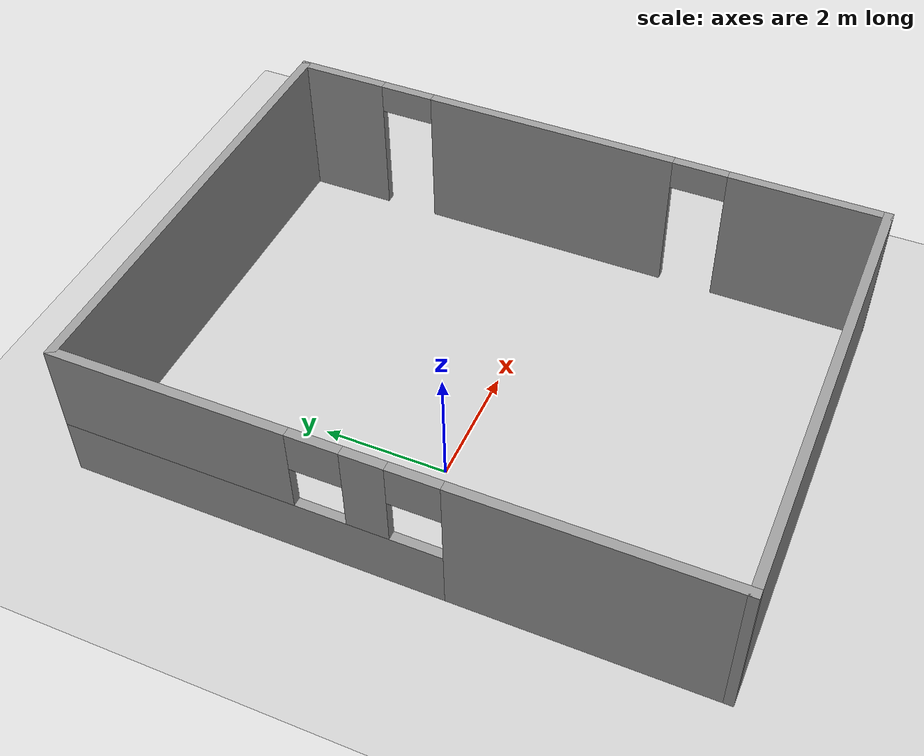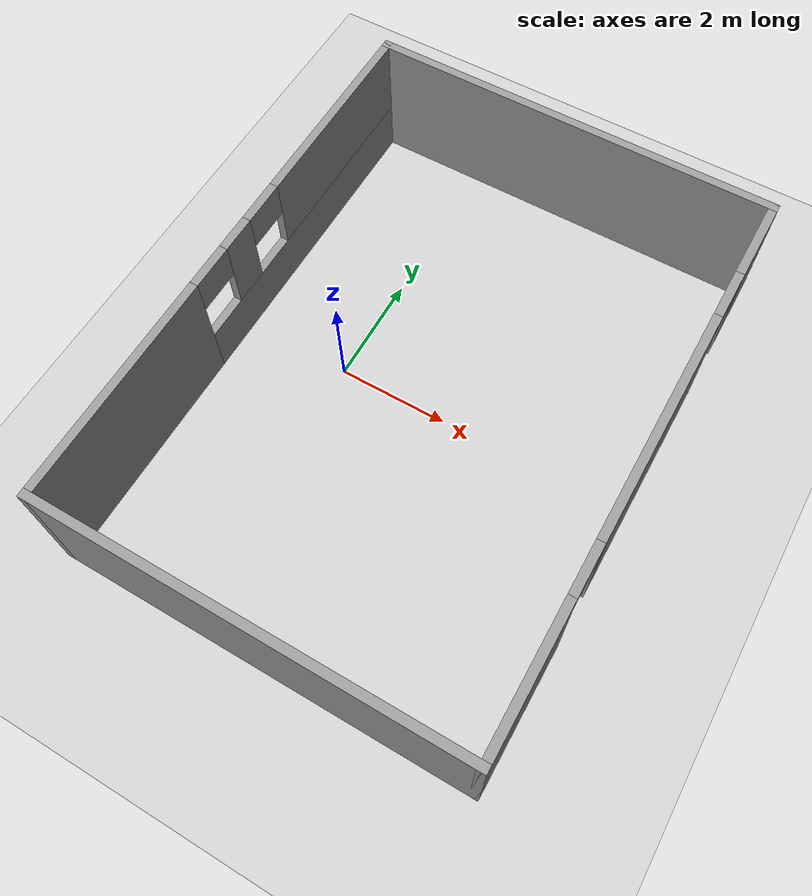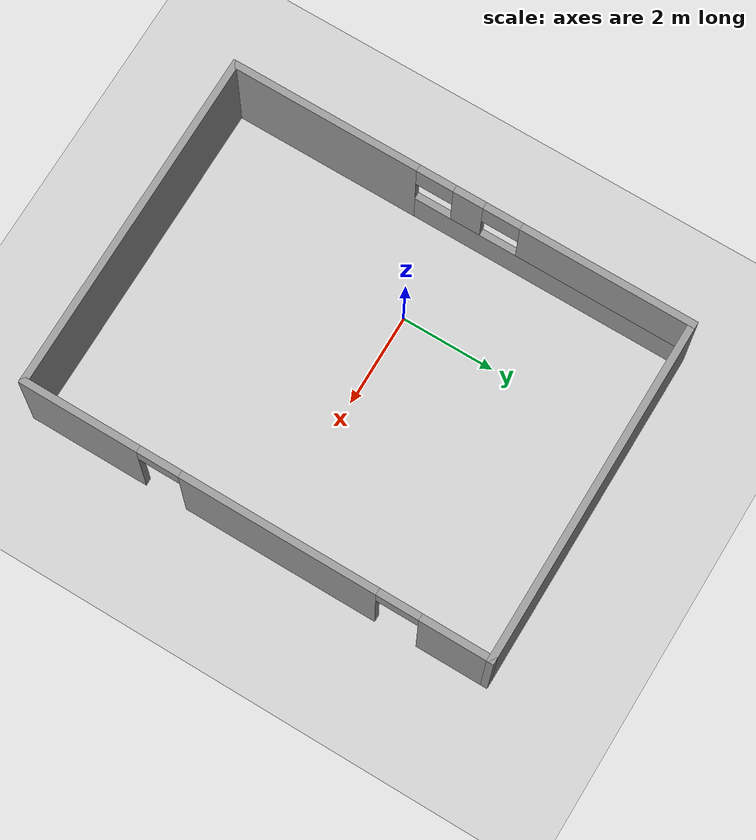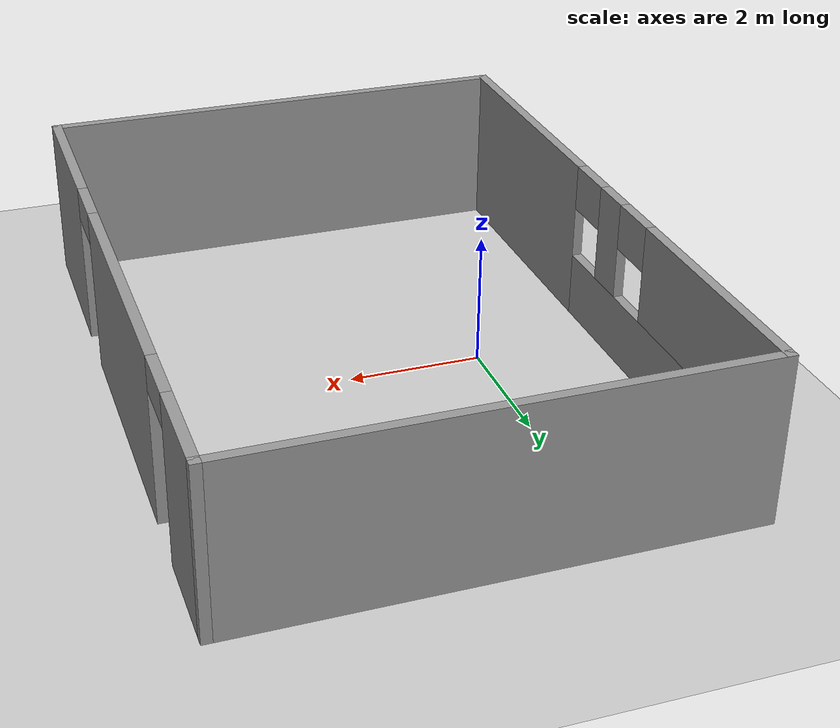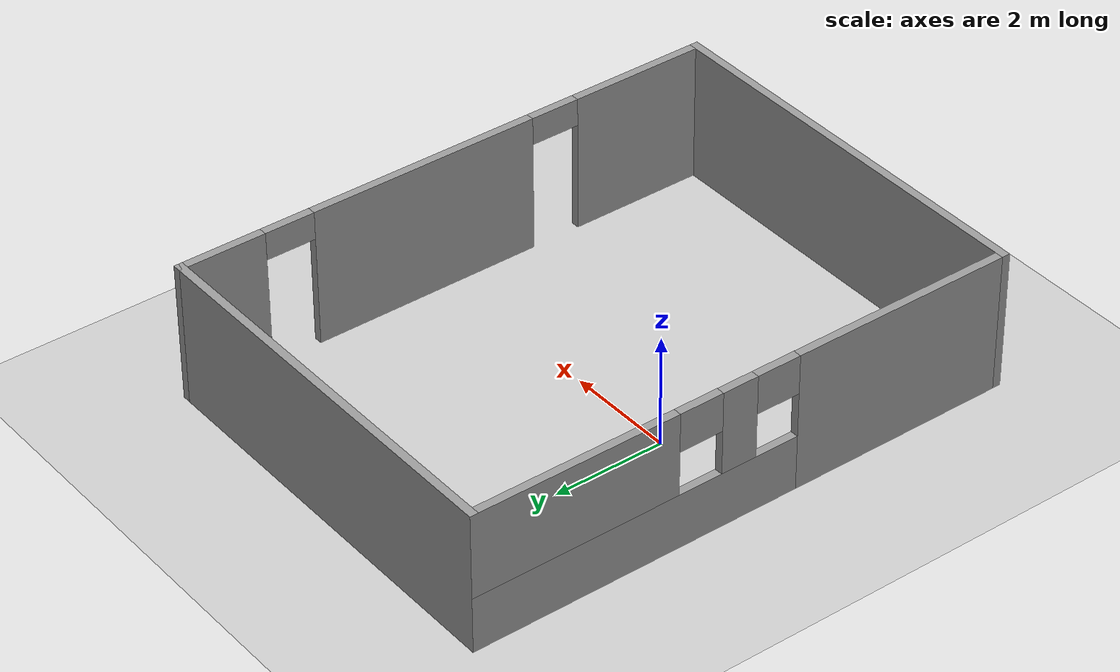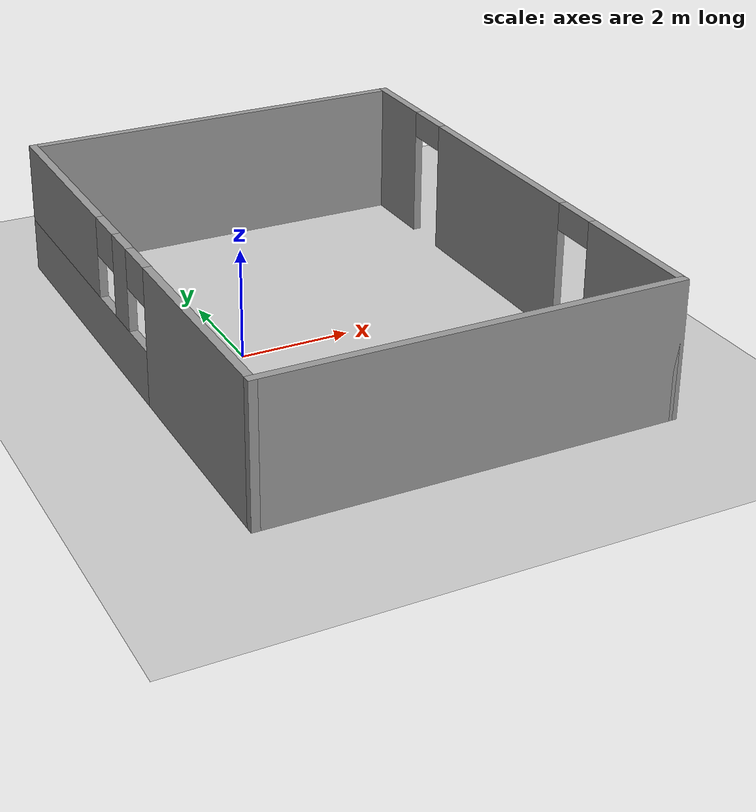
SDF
<?xml version="1.0" ?>
<sdf version="1.4">
  <world name="default">
    <include>
      <uri>model://ground_plane</uri>
    </include>

    <include>
      <uri>model://sun</uri>
    </include>

    <model name="kitchen_1">
      <pose>0 0 0  0 0 0</pose>
      <include>
        <static>false</static>
        <uri>model://kitchen_1</uri>
      </include>
      <!-- reference to your plugin -->
      <plugin name="model_walk" filename="libmodel_walk.so"/>
    </model>
  </world>
</sdf>

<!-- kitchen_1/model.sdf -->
<sdf version='1.6'>
  <model name='kitchen_1'>
    <pose frame=''>1.675 0 0 0 -0 0</pose>
    <link name='Wall_0'>
      <pose frame=''>-3.675 0 0 0 -0 1.5708</pose>
      <visual name='Wall_0_Visual_0'>
        <pose frame=''>-3.0016 0 1.25 0 -0 0</pose>
        <geometry>
          <box>
            <size>4.14681 0.15 2.5</size>
          </box>
        </geometry>
        <material>
          <script>
            <uri>file://media/materials/scripts/gazebo.material</uri>
            <name>Gazebo/Grey</name>
          </script>
          <ambient>1 1 1 1</ambient>
        </material>
      </visual>
      <collision name='Wall_0_Collision_0'>
        <geometry>
          <box>
            <size>4.14681 0.15 2.5</size>
          </box>
        </geometry>
        <pose frame=''>-3.0016 0 1.25 0 -0 0</pose>
      </collision>
      <visual name='Wall_0_Visual_1'>
        <pose frame=''>2.0734 0 0.5 0 -0 0</pose>
        <geometry>
          <box>
            <size>6.00319 0.15 1</size>
          </box>
        </geometry>
        <material>
          <script>
            <uri>file://media/materials/scripts/gazebo.material</uri>
            <name>Gazebo/Grey</name>
          </script>
          <ambient>1 1 1 1</ambient>
        </material>
      </visual>
      <collision name='Wall_0_Collision_1'>
        <geometry>
          <box>
            <size>6.00319 0.15 1</size>
          </box>
        </geometry>
        <pose frame=''>2.0734 0 0.5 0 -0 0</pose>
      </collision>
      <visual name='Wall_0_Visual_2'>
        <pose frame=''>0.197646 0 1.75 0 -0 0</pose>
        <geometry>
          <box>
            <size>0.651675 0.15 1.5</size>
          </box>
        </geometry>
        <material>
          <script>
            <uri>file://media/materials/scripts/gazebo.material</uri>
            <name>Gazebo/Grey</name>
          </script>
          <ambient>1 1 1 1</ambient>
        </material>
      </visual>
      <collision name='Wall_0_Collision_2'>
        <geometry>
          <box>
            <size>0.651675 0.15 1.5</size>
          </box>
        </geometry>
        <pose frame=''>0.197646 0 1.75 0 -0 0</pose>
      </collision>
      <visual name='Wall_0_Visual_3'>
        <pose frame=''>3.19924 0 1.75 0 -0 0</pose>
        <geometry>
          <box>
            <size>3.75152 0.15 1.5</size>
          </box>
        </geometry>
        <material>
          <script>
            <uri>file://media/materials/scripts/gazebo.material</uri>
            <name>Gazebo/Grey</name>
          </script>
          <ambient>1 1 1 1</ambient>
        </material>
      </visual>
      <collision name='Wall_0_Collision_3'>
        <geometry>
          <box>
            <size>3.75152 0.15 1.5</size>
          </box>
        </geometry>
        <pose frame=''>3.19924 0 1.75 0 -0 0</pose>
      </collision>
      <visual name='Wall_0_Visual_4'>
        <pose frame=''>-0.528191 0 2.15 0 -0 0</pose>
        <geometry>
          <box>
            <size>0.8 0.15 0.7</size>
          </box>
        </geometry>
        <material>
          <script>
            <uri>file://media/materials/scripts/gazebo.material</uri>
            <name>Gazebo/Grey</name>
          </script>
          <ambient>1 1 1 1</ambient>
        </material>
      </visual>
      <collision name='Wall_0_Collision_4'>
        <geometry>
          <box>
            <size>0.8 0.15 0.7</size>
          </box>
        </geometry>
        <pose frame=''>-0.528191 0 2.15 0 -0 0</pose>
      </collision>
      <visual name='Wall_0_Visual_5'>
        <pose frame=''>0.923484 0 2.15 0 -0 0</pose>
        <geometry>
          <box>
            <size>0.8 0.15 0.7</size>
          </box>
        </geometry>
        <material>
          <script>
            <uri>file://media/materials/scripts/gazebo.material</uri>
            <name>Gazebo/Grey</name>
          </script>
          <ambient>1 1 1 1</ambient>
        </material>
      </visual>
      <collision name='Wall_0_Collision_5'>
        <geometry>
          <box>
            <size>0.8 0.15 0.7</size>
          </box>
        </geometry>
        <pose frame=''>0.923484 0 2.15 0 -0 0</pose>
      </collision>
    </link>
    <link name='Wall_5'>
      <collision name='Wall_5_Collision'>
        <geometry>
          <box>
            <size>7.5 0.15 2.5</size>
          </box>
        </geometry>
        <pose frame=''>0 0 1.25 0 -0 0</pose>
      </collision>
      <visual name='Wall_5_Visual'>
        <pose frame=''>0 0 1.25 0 -0 0</pose>
        <geometry>
          <box>
            <size>7.5 0.15 2.5</size>
          </box>
        </geometry>
        <material>
          <script>
            <uri>file://media/materials/scripts/gazebo.material</uri>
            <name>Gazebo/Grey</name>
          </script>
          <ambient>1 1 1 1</ambient>
        </material>
      </visual>
      <pose frame=''>0 -5 0 0 -0 0</pose>
    </link>
    <link name='Wall_6'>
      <pose frame=''>3.675 0 0 0 -0 1.5708</pose>
      <visual name='Wall_6_Visual_0'>
        <pose frame=''>-3.78449 0 1.25 0 -0 0</pose>
        <geometry>
          <box>
            <size>2.58102 0.15 2.5</size>
          </box>
        </geometry>
        <material>
          <script>
            <uri>file://media/materials/scripts/gazebo.material</uri>
            <name>Gazebo/Grey</name>
          </script>
          <ambient>1 1 1 1</ambient>
        </material>
      </visual>
      <collision name='Wall_6_Collision_0'>
        <geometry>
          <box>
            <size>2.58102 0.15 2.5</size>
          </box>
        </geometry>
        <pose frame=''>-3.78449 0 1.25 0 -0 0</pose>
      </collision>
      <visual name='Wall_6_Visual_1'>
        <pose frame=''>0.5103 0 1.25 0 -0 0</pose>
        <geometry>
          <box>
            <size>4.20857 0.15 2.5</size>
          </box>
        </geometry>
        <material>
          <script>
            <uri>file://media/materials/scripts/gazebo.material</uri>
            <name>Gazebo/Grey</name>
          </script>
          <ambient>1 1 1 1</ambient>
        </material>
      </visual>
      <collision name='Wall_6_Collision_1'>
        <geometry>
          <box>
            <size>4.20857 0.15 2.5</size>
          </box>
        </geometry>
        <pose frame=''>0.5103 0 1.25 0 -0 0</pose>
      </collision>
      <visual name='Wall_6_Visual_2'>
        <pose frame=''>4.29479 0 1.25 0 -0 0</pose>
        <geometry>
          <box>
            <size>1.56042 0.15 2.5</size>
          </box>
        </geometry>
        <material>
          <script>
            <uri>file://media/materials/scripts/gazebo.material</uri>
            <name>Gazebo/Grey</name>
          </script>
          <ambient>1 1 1 1</ambient>
        </material>
      </visual>
      <collision name='Wall_6_Collision_2'>
        <geometry>
          <box>
            <size>1.56042 0.15 2.5</size>
          </box>
        </geometry>
        <pose frame=''>4.29479 0 1.25 0 -0 0</pose>
      </collision>
      <visual name='Wall_6_Visual_3'>
        <pose frame=''>-2.04398 0 2.25 0 -0 0</pose>
        <geometry>
          <box>
            <size>0.9 0.15 0.5</size>
          </box>
        </geometry>
        <material>
          <script>
            <uri>file://media/materials/scripts/gazebo.material</uri>
            <name>Gazebo/Grey</name>
          </script>
          <ambient>1 1 1 1</ambient>
        </material>
      </visual>
      <collision name='Wall_6_Collision_3'>
        <geometry>
          <box>
            <size>0.9 0.15 0.5</size>
          </box>
        </geometry>
        <pose frame=''>-2.04398 0 2.25 0 -0 0</pose>
      </collision>
      <visual name='Wall_6_Visual_4'>
        <pose frame=''>3.06458 0 2.25 0 -0 0</pose>
        <geometry>
          <box>
            <size>0.9 0.15 0.5</size>
          </box>
        </geometry>
        <material>
          <script>
            <uri>file://media/materials/scripts/gazebo.material</uri>
            <name>Gazebo/Grey</name>
          </script>
          <ambient>1 1 1 1</ambient>
        </material>
      </visual>
      <collision name='Wall_6_Collision_4'>
        <geometry>
          <box>
            <size>0.9 0.15 0.5</size>
          </box>
        </geometry>
        <pose frame=''>3.06458 0 2.25 0 -0 0</pose>
      </collision>
    </link>
    <link name='Wall_7'>
      <collision name='Wall_7_Collision'>
        <geometry>
          <box>
            <size>7.5 0.15 2.5</size>
          </box>
        </geometry>
        <pose frame=''>0 0 1.25 0 -0 0</pose>
      </collision>
      <visual name='Wall_7_Visual'>
        <pose frame=''>0 0 1.25 0 -0 0</pose>
        <geometry>
          <box>
            <size>7.5 0.15 2.5</size>
          </box>
        </geometry>
        <material>
          <script>
            <uri>file://media/materials/scripts/gazebo.material</uri>
            <name>Gazebo/Grey</name>
          </script>
          <ambient>1 1 1 1</ambient>
        </material>
      </visual>
      <pose frame=''>0 5 0 0 -0 3.14159</pose>
    </link>
    <static>1</static>
  </model>
</sdf>
